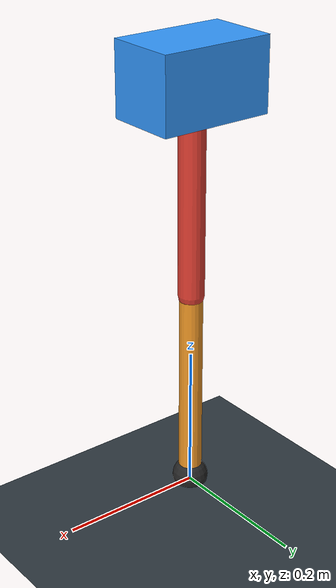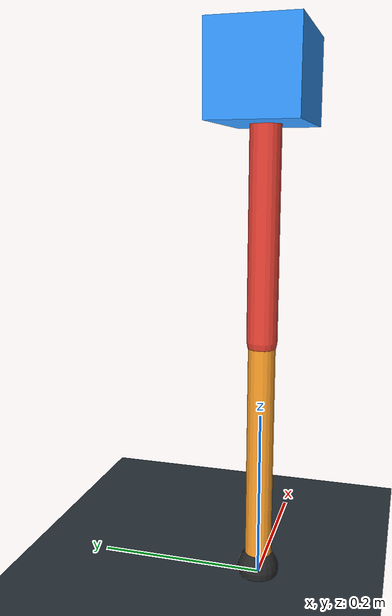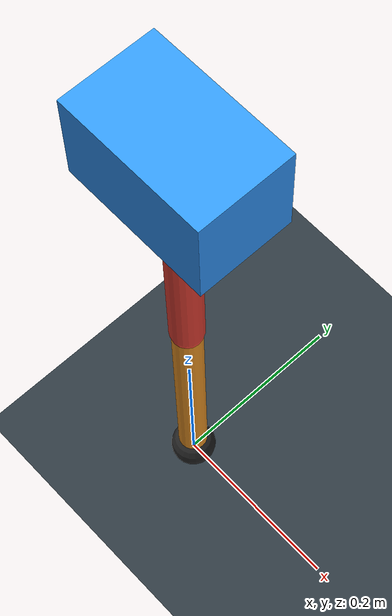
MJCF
<mujoco model="single_axis_two_bar">
  <compiler angle="radian" inertiafromgeom="true"/>
  <option timestep="0.001" integrator="implicitfast" gravity="0 0 -9.81"/>
  <default>
    <joint damping="0.08"/>
    <geom friction="1.2 0.01 0.0001" condim="3"/>
  </default>
  <worldbody>
    <geom name="floor" type="plane" size="5 5 0.1" rgba="0.18 0.22 0.25 1"/>
    <body name="carriage" pos="0 0 0.5854846930602026">
      <joint name="pole_slide" type="slide" axis="0 0 1"/>
      <geom name="payload" type="box" size="0.08 0.05 0.05" mass="2.6947051267719697" rgba="0.2 0.6 1 1"/>
      <body name="thigh" pos="0 0 0">
        <joint name="hip" type="hinge" axis="0 1 0"/>
        <geom name="thigh_link" type="capsule" fromto="0 0 0 0 0 -0.294857663207177" size="0.018" mass="0.21008998123537753" rgba="0.9 0.25 0.2 1"/>
        <body name="shank" pos="0 0 -0.294857663207177">
          <joint name="knee" type="hinge" axis="0 1 0"/>
          <geom name="shank_link" type="capsule" fromto="0 0 0 0 0 -0.2829616079889081" size="0.016" mass="0.20161388469986008" rgba="0.95 0.6 0.15 1"/>
          <geom name="foot" type="sphere" pos="0 0 -0.2829616079889081" size="0.025" mass="0.03" rgba="0.15 0.15 0.15 1"/>
          <site name="toe" pos="0 0 -0.2829616079889081" size="0.008"/>
        </body>
      </body>
    </body>
  </worldbody>
  <actuator>
    <motor name="hip_motor" joint="hip" ctrlrange="-35.44165243172549 35.44165243172549"/>
    <motor name="knee_motor" joint="knee" ctrlrange="-95.24796766039364 95.24796766039364"/>
  </actuator>
</mujoco>
